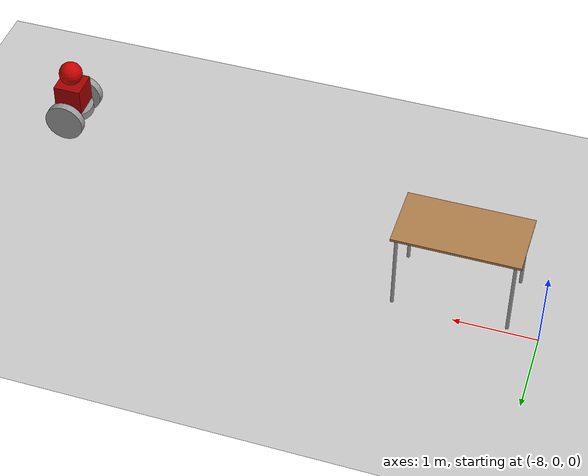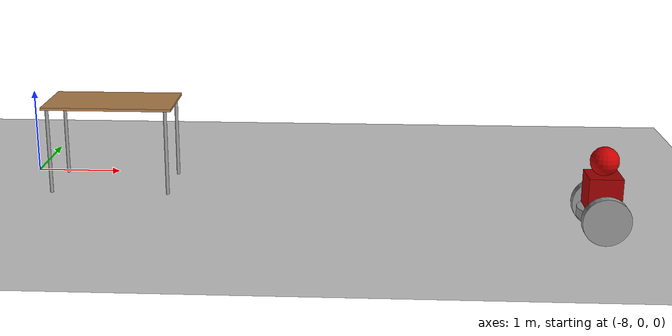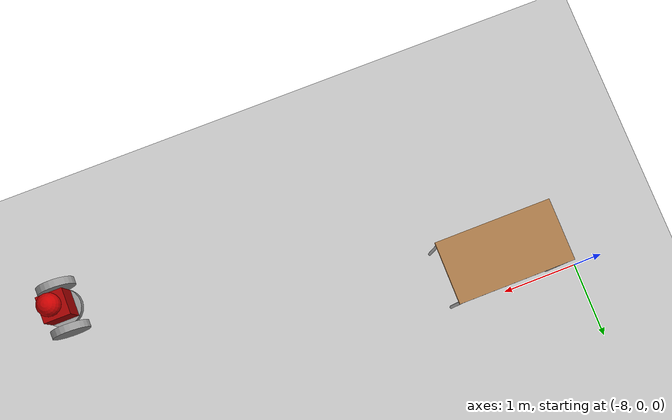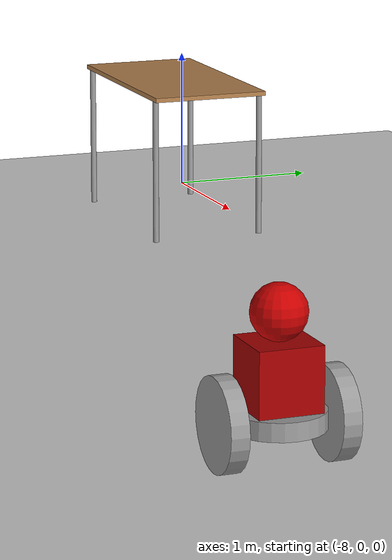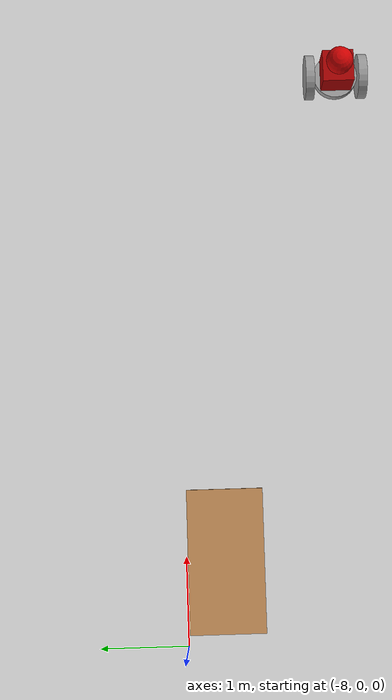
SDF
<sdf version="1.7">
 <world name="default">
  <model name="ground_plane">
   <static>1</static>
   <link name="link">
    <collision name="collision">
     <geometry><plane><normal>0 0 1</normal><size>100 100</size></plane></geometry>
     <surface>
      <contact><collide_bitmask>65535</collide_bitmask></contact>
      <friction><ode><mu>100</mu><mu2>50</mu2></ode></friction>
     </surface>
    </collision>
    <visual name="visual">
     <cast_shadows>0</cast_shadows>
     <geometry><plane><normal>0 0 1</normal><size>100 100</size></plane></geometry>
     <material>
      <script><uri>file://media/materials/scripts/gazebo.material</uri><name>Gazebo/Grey</name></script>
     </material>
    </visual>
   </link>
  </model>
  <model name="table_clone_clone">
   <static>1</static>
   <link name="link">
    <collision name="surface">
     <pose>0 0 1 0 -0 0</pose>
     <geometry><box><size>1.5 0.8 0.03</size></box></geometry>
     <surface><friction><ode><mu>0.6</mu><mu2>0.6</mu2></ode></friction></surface>
    </collision>
    <visual name="visual1">
     <pose>0 0 1 0 -0 0</pose>
     <geometry><box><size>1.5 0.8 0.03</size></box></geometry>
     <material>
      <script><uri>file://media/materials/scripts/gazebo.material</uri><name>Gazebo/Wood</name></script>
     </material>
    </visual>
    <collision name="front_left_leg">
     <pose>0.68 0.38 0.5 0 -0 0</pose>
     <geometry><cylinder><radius>0.02</radius><length>1</length></cylinder></geometry>
    </collision>
    <visual name="front_left_leg">
     <pose>0.68 0.38 0.5 0 -0 0</pose>
     <geometry><cylinder><radius>0.02</radius><length>1</length></cylinder></geometry>
     <material>
      <script><uri>file://media/materials/scripts/gazebo.material</uri><name>Gazebo/Grey</name></script>
     </material>
    </visual>
    <collision name="front_right_leg">
     <pose>0.68 -0.38 0.5 0 -0 0</pose>
     <geometry><cylinder><radius>0.02</radius><length>1</length></cylinder></geometry>
    </collision>
    <visual name="front_right_leg">
     <pose>0.68 -0.38 0.5 0 -0 0</pose>
     <geometry><cylinder><radius>0.02</radius><length>1</length></cylinder></geometry>
     <material>
      <script><uri>file://media/materials/scripts/gazebo.material</uri><name>Gazebo/Grey</name></script>
     </material>
    </visual>
    <collision name="back_right_leg">
     <pose>-0.68 -0.38 0.5 0 -0 0</pose>
     <geometry><cylinder><radius>0.02</radius><length>1</length></cylinder></geometry>
    </collision>
    <visual name="back_right_leg">
     <pose>-0.68 -0.38 0.5 0 -0 0</pose>
     <geometry><cylinder><radius>0.02</radius><length>1</length></cylinder></geometry>
     <material>
      <script><uri>file://media/materials/scripts/gazebo.material</uri><name>Gazebo/Grey</name></script>
     </material>
    </visual>
    <collision name="back_left_leg">
     <pose>-0.68 0.38 0.5 0 -0 0</pose>
     <geometry><cylinder><radius>0.02</radius><length>1</length></cylinder></geometry>
    </collision>
    <visual name="back_left_leg">
     <pose>-0.68 0.38 0.5 0 -0 0</pose>
     <geometry><cylinder><radius>0.02</radius><length>1</length></cylinder></geometry>
     <material>
      <script><uri>file://media/materials/scripts/gazebo.material</uri><name>Gazebo/Grey</name></script>
     </material>
    </visual>
   </link>
   <pose>-6.93829 -0.453343 0 0 -0 0</pose>
  </model>
  <model name="TwoWheeledRobot">
   <link name="link_0">
    <inertial>
     <mass>1</mass>
     <inertia><ixx>0.145833</ixx><ixy>0</ixy><ixz>0</ixz><iyy>0.145833</iyy><iyz>0</iyz><izz>0.125</izz></inertia>
    </inertial>
    <pose>0 0 0.2 0 -0 0</pose>
    <visual name="visual">
     <geometry><cylinder><radius>0.25</radius><length>0.1</length></cylinder></geometry>
     <material>
      <lighting>1</lighting>
      <script><uri>file://media/materials/scripts/gazebo.material</uri><name>Gazebo/Grey</name></script>
      <shader type="pixel"><normal_map>__default__</normal_map></shader>
      <ambient>0.333 0.341 0.325 1</ambient>
      <diffuse>0.333 0.341 0.325 1</diffuse>
      <specular>0.333 0.341 0.325 1</specular>
      <emissive>0 0 0 1</emissive>
     </material>
    </visual>
    <collision name="collision">
     <geometry><cylinder><radius>0.25</radius><length>0.1</length></cylinder></geometry>
     <surface>
      <friction>
       <ode><mu>1</mu><mu2>1</mu2><fdir1>0 0 0</fdir1><slip1>0</slip1><slip2>0</slip2></ode>
       <torsional>
        <coefficient>1</coefficient>
        <patch_radius>0</patch_radius>
        <surface_radius>0</surface_radius>
        <use_patch_radius>1</use_patch_radius>
        <ode><slip>0</slip></ode>
       </torsional>
      </friction>
      <bounce><restitution_coefficient>0</restitution_coefficient><threshold>1e+06</threshold></bounce>
      <contact>
       <collide_without_contact>0</collide_without_contact>
       <collide_without_contact_bitmask>1</collide_without_contact_bitmask>
       <collide_bitmask>1</collide_bitmask>
       <ode>
        <soft_cfm>0</soft_cfm>
        <soft_erp>0.2</soft_erp>
        <kp>1e+13</kp>
        <kd>1</kd>
        <max_vel>0.01</max_vel>
        <min_depth>0</min_depth>
       </ode>
       <bullet>
        <split_impulse>1</split_impulse>
        <split_impulse_penetration_threshold>-0.01</split_impulse_penetration_threshold>
        <soft_cfm>0</soft_cfm>
        <soft_erp>0.2</soft_erp>
        <kp>1e+13</kp>
        <kd>1</kd>
       </bullet>
      </contact>
     </surface>
    </collision>
   </link>
   <link name="link_1">
    <inertial>
     <mass>1</mass>
     <inertia><ixx>0.145833</ixx><ixy>0</ixy><ixz>0</ixz><iyy>0.145833</iyy><iyz>0</iyz><izz>0.125</izz></inertia>
    </inertial>
    <pose>0 -0.300024 0.2 1.5707 -0 0</pose>
    <visual name="visual">
     <geometry><cylinder><radius>0.25</radius><length>0.1</length></cylinder></geometry>
     <material>
      <lighting>1</lighting>
      <script><uri>file://media/materials/scripts/gazebo.material</uri><name>Gazebo/Grey</name></script>
      <shader type="pixel"><normal_map>__default__</normal_map></shader>
      <ambient>0 0 0 1</ambient>
      <diffuse>0 0 0 1</diffuse>
      <specular>0 0 0 1</specular>
      <emissive>0 0 0 1</emissive>
     </material>
    </visual>
    <collision name="collision">
     <geometry><cylinder><radius>0.25</radius><length>0.1</length></cylinder></geometry>
     <surface>
      <friction>
       <ode><mu>1</mu><mu2>1</mu2><fdir1>0 0 0</fdir1><slip1>0</slip1><slip2>0</slip2></ode>
       <torsional>
        <coefficient>1</coefficient>
        <patch_radius>0</patch_radius>
        <surface_radius>0</surface_radius>
        <use_patch_radius>1</use_patch_radius>
        <ode><slip>0</slip></ode>
       </torsional>
      </friction>
      <bounce><restitution_coefficient>0</restitution_coefficient><threshold>1e+06</threshold></bounce>
      <contact>
       <collide_without_contact>0</collide_without_contact>
       <collide_without_contact_bitmask>1</collide_without_contact_bitmask>
       <collide_bitmask>1</collide_bitmask>
       <ode>
        <soft_cfm>0</soft_cfm>
        <soft_erp>0.2</soft_erp>
        <kp>1e+13</kp>
        <kd>1</kd>
        <max_vel>0.01</max_vel>
        <min_depth>0</min_depth>
       </ode>
       <bullet>
        <split_impulse>1</split_impulse>
        <split_impulse_penetration_threshold>-0.01</split_impulse_penetration_threshold>
        <soft_cfm>0</soft_cfm>
        <soft_erp>0.2</soft_erp>
        <kp>1e+13</kp>
        <kd>1</kd>
       </bullet>
      </contact>
     </surface>
    </collision>
   </link>
   <link name="link_1_clone">
    <inertial>
     <mass>1</mass>
     <inertia><ixx>0.145833</ixx><ixy>0</ixy><ixz>0</ixz><iyy>0.145833</iyy><iyz>0</iyz><izz>0.125</izz></inertia>
    </inertial>
    <pose>0 0.300024 0.2 1.5707 -0 0</pose>
    <visual name="visual">
     <geometry><cylinder><radius>0.25</radius><length>0.1</length></cylinder></geometry>
     <material>
      <lighting>1</lighting>
      <script><uri>file://media/materials/scripts/gazebo.material</uri><name>Gazebo/Grey</name></script>
      <shader type="pixel"><normal_map>__default__</normal_map></shader>
      <ambient>0 0 0 1</ambient>
      <diffuse>0 0 0 1</diffuse>
      <specular>0 0 0 1</specular>
      <emissive>0 0 0 1</emissive>
     </material>
    </visual>
    <collision name="collision">
     <geometry><cylinder><radius>0.25</radius><length>0.1</length></cylinder></geometry>
     <surface>
      <friction>
       <ode><mu>1</mu><mu2>1</mu2><fdir1>0 0 0</fdir1><slip1>0</slip1><slip2>0</slip2></ode>
       <torsional>
        <coefficient>1</coefficient>
        <patch_radius>0</patch_radius>
        <surface_radius>0</surface_radius>
        <use_patch_radius>1</use_patch_radius>
        <ode><slip>0</slip></ode>
       </torsional>
      </friction>
      <bounce><restitution_coefficient>0</restitution_coefficient><threshold>1e+06</threshold></bounce>
      <contact>
       <collide_without_contact>0</collide_without_contact>
       <collide_without_contact_bitmask>1</collide_without_contact_bitmask>
       <collide_bitmask>1</collide_bitmask>
       <ode>
        <soft_cfm>0</soft_cfm>
        <soft_erp>0.2</soft_erp>
        <kp>1e+13</kp>
        <kd>1</kd>
        <max_vel>0.01</max_vel>
        <min_depth>0</min_depth>
       </ode>
       <bullet>
        <split_impulse>1</split_impulse>
        <split_impulse_penetration_threshold>-0.01</split_impulse_penetration_threshold>
        <soft_cfm>0</soft_cfm>
        <soft_erp>0.2</soft_erp>
        <kp>1e+13</kp>
        <kd>1</kd>
       </bullet>
      </contact>
     </surface>
    </collision>
   </link>
   <link name="link_2">
    <inertial>
     <mass>1</mass>
     <inertia>
      <ixx>0.166667</ixx>
      <ixy>0</ixy>
      <ixz>0</ixz>
      <iyy>0.166667</iyy>
      <iyz>0</iyz>
      <izz>0.166667</izz>
     </inertia>
    </inertial>
    <pose>0 0 0.43 0 -0 0</pose>
    <visual name="visual">
     <geometry><box><size>0.35 0.35 0.35</size></box></geometry>
     <material>
      <lighting>1</lighting>
      <script><uri>file://media/materials/scripts/gazebo.material</uri><name>Gazebo/Grey</name></script>
      <shader type="pixel"><normal_map>__default__</normal_map></shader>
      <ambient>0.643 0 0 1</ambient>
      <diffuse>0.643 0 0 1</diffuse>
      <specular>0.01 0.01 0.01 1</specular>
      <emissive>0 0 0 1</emissive>
     </material>
    </visual>
    <collision name="collision">
     <geometry><box><size>0.35 0.35 0.35</size></box></geometry>
     <surface>
      <friction>
       <ode><mu>1</mu><mu2>1</mu2><fdir1>0 0 0</fdir1><slip1>0</slip1><slip2>0</slip2></ode>
       <torsional>
        <coefficient>1</coefficient>
        <patch_radius>0</patch_radius>
        <surface_radius>0</surface_radius>
        <use_patch_radius>1</use_patch_radius>
        <ode><slip>0</slip></ode>
       </torsional>
      </friction>
      <bounce><restitution_coefficient>0</restitution_coefficient><threshold>1e+06</threshold></bounce>
      <contact>
       <collide_without_contact>0</collide_without_contact>
       <collide_without_contact_bitmask>1</collide_without_contact_bitmask>
       <collide_bitmask>1</collide_bitmask>
       <ode>
        <soft_cfm>0</soft_cfm>
        <soft_erp>0.2</soft_erp>
        <kp>1e+13</kp>
        <kd>1</kd>
        <max_vel>0.01</max_vel>
        <min_depth>0</min_depth>
       </ode>
       <bullet>
        <split_impulse>1</split_impulse>
        <split_impulse_penetration_threshold>-0.01</split_impulse_penetration_threshold>
        <soft_cfm>0</soft_cfm>
        <soft_erp>0.2</soft_erp>
        <kp>1e+13</kp>
        <kd>1</kd>
       </bullet>
      </contact>
     </surface>
    </collision>
   </link>
   <link name="link_3">
    <inertial>
     <mass>1</mass>
     <inertia><ixx>0.1</ixx><ixy>0</ixy><ixz>0</ixz><iyy>0.1</iyy><iyz>0</iyz><izz>0.1</izz></inertia>
    </inertial>
    <pose>0 0 0.75 0 -0 0</pose>
    <visual name="visual">
     <geometry><sphere><radius>0.15</radius></sphere></geometry>
     <material>
      <lighting>1</lighting>
      <script><uri>file://media/materials/scripts/gazebo.material</uri><name>Gazebo/Grey</name></script>
      <shader type="pixel"><normal_map>__default__</normal_map></shader>
      <ambient>0.937 0.161 0.161 1</ambient>
      <diffuse>0.8 0 0 1</diffuse>
      <specular>0.937 0.161 0.161 1</specular>
      <emissive>0 0 0 1</emissive>
     </material>
    </visual>
    <collision name="collision">
     <geometry><sphere><radius>0.15</radius></sphere></geometry>
     <surface>
      <friction>
       <ode><mu>1</mu><mu2>1</mu2><fdir1>0 0 0</fdir1><slip1>0</slip1><slip2>0</slip2></ode>
       <torsional>
        <coefficient>1</coefficient>
        <patch_radius>0</patch_radius>
        <surface_radius>0</surface_radius>
        <use_patch_radius>1</use_patch_radius>
        <ode><slip>0</slip></ode>
       </torsional>
      </friction>
      <bounce><restitution_coefficient>0</restitution_coefficient><threshold>1e+06</threshold></bounce>
      <contact>
       <collide_without_contact>0</collide_without_contact>
       <collide_without_contact_bitmask>1</collide_without_contact_bitmask>
       <collide_bitmask>1</collide_bitmask>
       <ode>
        <soft_cfm>0</soft_cfm>
        <soft_erp>0.2</soft_erp>
        <kp>1e+13</kp>
        <kd>1</kd>
        <max_vel>0.01</max_vel>
        <min_depth>0</min_depth>
       </ode>
       <bullet>
        <split_impulse>1</split_impulse>
        <split_impulse_penetration_threshold>-0.01</split_impulse_penetration_threshold>
        <soft_cfm>0</soft_cfm>
        <soft_erp>0.2</soft_erp>
        <kp>1e+13</kp>
        <kd>1</kd>
       </bullet>
      </contact>
     </surface>
    </collision>
   </link>
   <joint name="link_0_JOINT_0" type="revolute">
    <parent>link_0</parent>
    <child>link_1</child>
    <axis>
     <xyz>0 0 1</xyz>
     <limit>
      <lower>-1.79769e+308</lower>
      <upper>1.79769e+308</upper>
      <effort>-1</effort>
      <velocity>-1</velocity>
     </limit>
     <dynamics>
      <spring_reference>0</spring_reference>
      <spring_stiffness>0</spring_stiffness>
      <damping>0</damping>
     </dynamics>
    </axis>
    <physics>
     <ode><limit><cfm>0</cfm><erp>0.2</erp></limit><suspension><cfm>0</cfm><erp>0.2</erp></suspension></ode>
    </physics>
   </joint>
   <joint name="link_0_JOINT_1" type="revolute">
    <parent>link_0</parent>
    <child>link_1_clone</child>
    <axis>
     <xyz>0 0 1</xyz>
     <limit>
      <lower>-1.79769e+308</lower>
      <upper>1.79769e+308</upper>
      <effort>-1</effort>
      <velocity>-1</velocity>
     </limit>
     <dynamics>
      <spring_reference>0</spring_reference>
      <spring_stiffness>0</spring_stiffness>
      <damping>0</damping>
     </dynamics>
    </axis>
    <physics>
     <ode><limit><cfm>0</cfm><erp>0.2</erp></limit><suspension><cfm>0</cfm><erp>0.2</erp></suspension></ode>
    </physics>
   </joint>
   <joint name="link_0_JOINT_5" type="fixed">
    <parent>link_0</parent>
    <child>link_2</child>
    <physics>
     <ode><limit><cfm>0</cfm><erp>0.2</erp></limit><suspension><cfm>0</cfm><erp>0.2</erp></suspension></ode>
    </physics>
   </joint>
   <joint name="link_2_JOINT_6" type="fixed">
    <parent>link_2</parent>
    <child>link_3</child>
    <physics>
     <ode><limit><cfm>0</cfm><erp>0.2</erp></limit><suspension><cfm>0</cfm><erp>0.2</erp></suspension></ode>
    </physics>
   </joint>
   <static>0</static>
   <pose>-1.52698 -1.87625 0.050005 1e-06 -0 0</pose>
  </model>
 </world>
</sdf>
